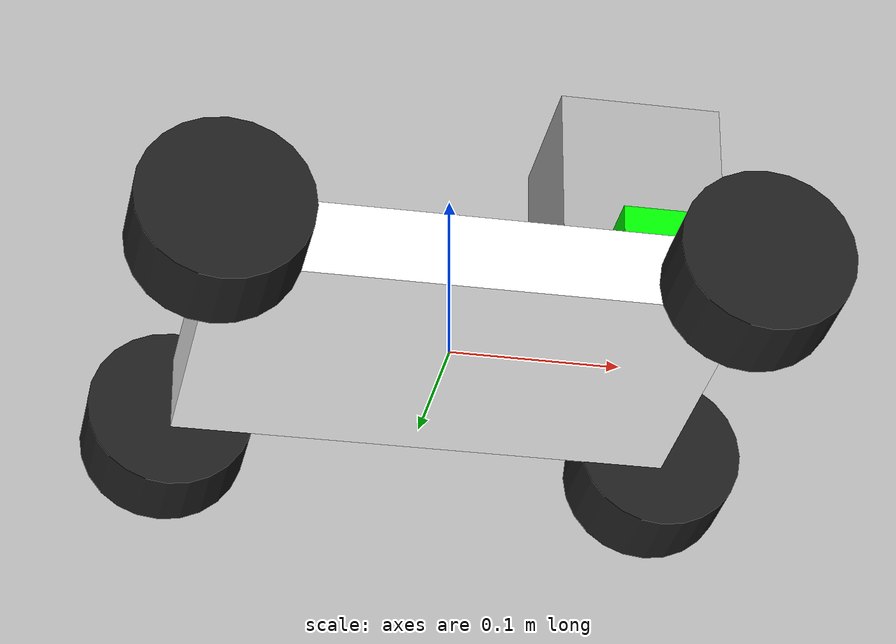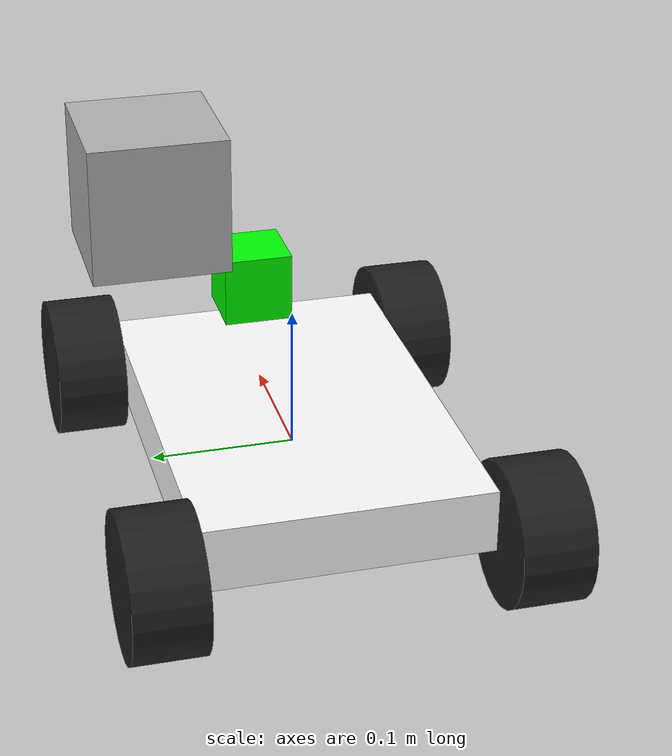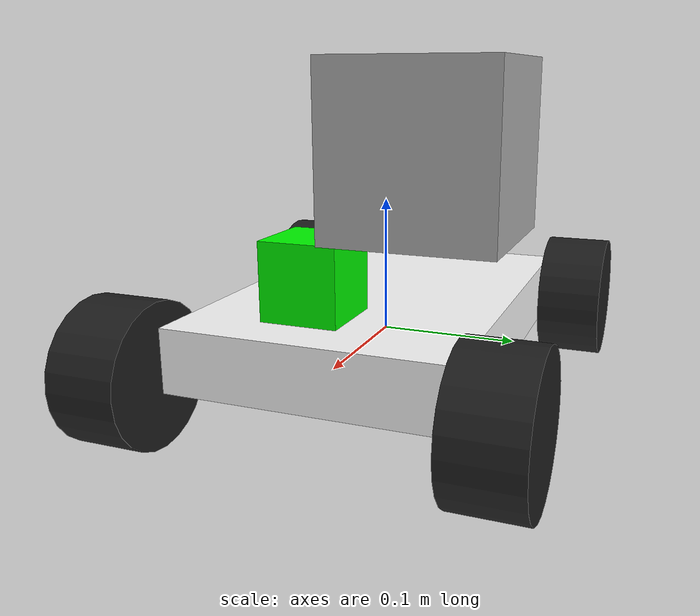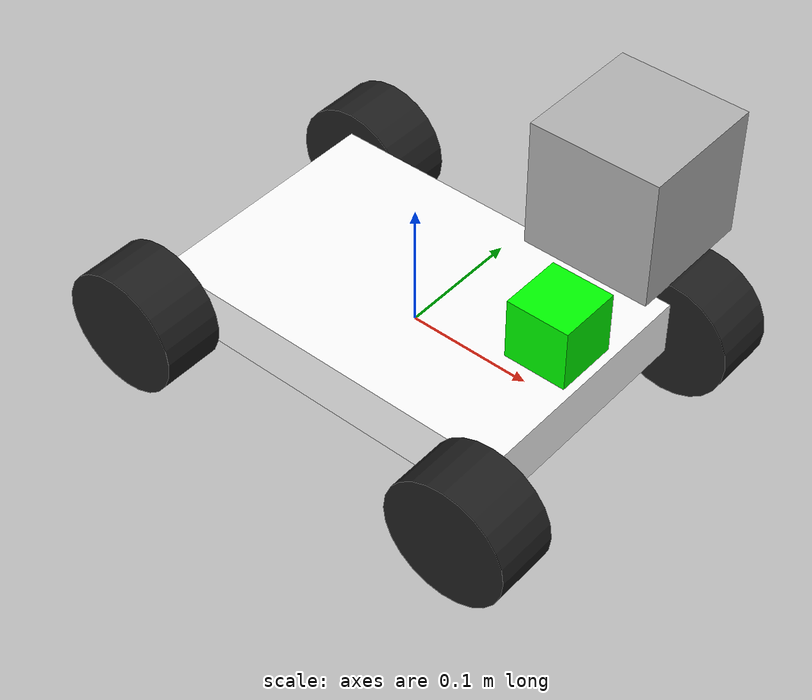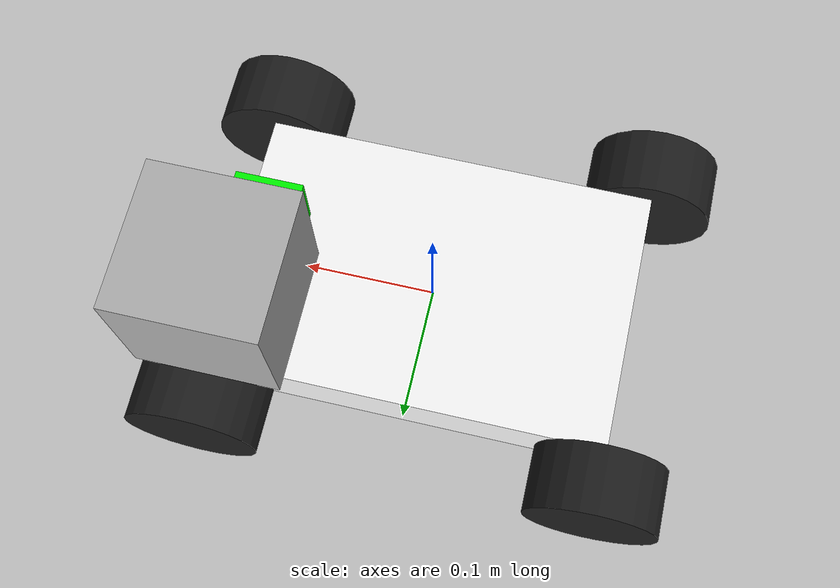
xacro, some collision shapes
<?xml version="1.0"?>

<robot xmlns:xacro="http://www.ros.org/wiki/xacro"
	xmlns:sensor="http://playerstage.sourceforge.net/gazebo/xmlschema/#sensor"
    	xmlns:controller="http://playerstage.sourceforge.net/gazebo/xmlschema/#controller"
    	xmlns:interface="http://playerstage.sourceforge.net/gazebo/xmlschema/#interface"
        name="smcar_xacro">

<xacro:include filename="$(find smcar)/urdf/robot.gazebo" />
<xacro:property name="length_wheel" value="0.05" />
<xacro:property name="radius_wheel" value="0.05" />
<xacro:property name="camera_link" value="0.05" />

  <!--inertial macro -->
  <xacro:macro name="default_inertial" params="mass">
    <inertial>
      <mass value="${mass}" />
      <inertia ixx="1.0" ixy="0.0" ixz="0.0"
        iyy="1.0" iyz="0.0" izz="1.0" />
      </inertial>
  </xacro:macro>
  <!--wheel link macro -->
  <xacro:macro name="default_wheel" params="wheel_link length radius location">
    <link name="${wheel_link}">
   		<visual>
     			<geometry>
       				<cylinder length="${length_wheel}" radius="${radius_wheel}"/>
     			</geometry>
			<origin rpy="0 0 0" xyz="0 0 0"/>
   			<material name="black"/>
   		</visual>
		<collision>
			<geometry>
       				<cylinder length="${length_wheel}" radius="${radius_wheel}"/>
			</geometry>
		</collision>
		<xacro:default_inertial mass="1"/>
 	</link>
  </xacro:macro>

  <!--end of macro declarations-->

	<link name="base_footprint">
   		<visual>
			<geometry>
      				<box size="0.001 0.001 0.001"/>
     			</geometry>
			<origin rpy="0 0 0" xyz="0 0 0"/>
   		</visual>
		<collision>
      			<geometry>
        			<box size="0.001 0.001 0.001"/>
      			</geometry>
    		</collision>
		<xacro:default_inertial mass="0.0001"/>
 	</link>

	<gazebo reference="base_footprint">
		<material>Gazebo/Green</material>
		<turnGravityOff>false</turnGravityOff>
	</gazebo>

	<joint name="base_footprint_joint" type="fixed">
		<origin xyz="0 0 0" />
		<parent link="base_link" />
		<child link="base_footprint" />
	</joint>

  <link name="base_link">
    <visual>
      <geometry>
        <box size="0.3 0.2 .045"/>
      </geometry>
      <origin rpy="0 0 0" xyz="0 0 0.01"/>
      <material name="white">
        <color rgba="1 1 1 1"/>
      </material>
    </visual>
    <collision>
      <geometry>
        <box size="0.3 0.2 0.045"/>
      </geometry>
    </collision>
    <inertial>
      <mass value="10"/>
      <inertia ixx="1.0" ixy="0.0" ixz="0.0" iyy="1.0" iyz="0.0" izz="1.0"/>
    </inertial>
  </link>

  <xacro:default_wheel wheel_link="wheel_1" length="0.05" radius="0.05" location="0 0 0"/>
  <xacro:default_wheel wheel_link="wheel_2" length="0.05" radius="0.05" location="0 0 0"/>
  <xacro:default_wheel wheel_link="wheel_3" length="0.05" radius="0.05" location="0 0 0"/>
  <xacro:default_wheel wheel_link="wheel_4" length="0.05" radius="0.05" location="0 0 0"/>

 <joint name="base_to_wheel1" type="continuous">
   <anchor xyz="0 0 0" />
   <limit effort="100" velocity="100" />
   <parent link="base_link"/>
   <child link="wheel_1"/>
   <origin rpy="-1.5707 0 0" xyz="0.15 0.125 0"/>
   <axis xyz="0 0 1" />
 </joint>

 <joint name="base_to_wheel2" type="continuous">
   <axis xyz="0 0 1" />
   <anchor xyz="0 0 0" />
   <limit effort="100" velocity="100" />
   <parent link="base_link"/>
   <child link="wheel_2"/>
   <origin rpy="-1.5707 0 0" xyz="-0.15 0.125 0"/>
</joint>

 <joint name="base_to_wheel3" type="continuous">
   <anchor xyz="0 0 0" />
   <limit effort="100" velocity="100" />
   <parent link="base_link"/>
   <axis xyz="0 0 1" />
   <child link="wheel_3"/>
   <origin rpy="-1.5707 0 0" xyz="0.15 -0.125 0"/>
 </joint>

 <joint name="base_to_wheel4" type="continuous">
   <anchor xyz="0 0 0" />
   <limit effort="100" velocity="100" />
   <parent link="base_link"/>
   <axis xyz="0 0 1" />
   <child link="wheel_4"/>
   <origin rpy="-1.5707 0 0" xyz="-0.15 -0.125 0"/>
 </joint>
  <!-- Camera joint -->
  <joint name="camera_joint" type="fixed">
    <axis xyz="0 1 0" />
    <origin xyz="0.125 0 0.07" rpy="0 0 0"/>
    <parent link="base_link"/>
    <child link="camera_link"/>
  </joint>

  <!-- Camera -->
  <link name="camera_link">
    <collision>
      <origin xyz="0 0 0" rpy="0 0 0"/>
      <geometry>
	<box size="0.05 0.05 0.05"/>
      </geometry>
    </collision>

    <visual>
      <origin xyz="0 0 0" rpy="0 0 0"/>
      <geometry>
	<box size="0.05 0.05 0.05"/>
      </geometry>
      <material name="green">
	<color rgba="0 1 0 1"/>
      </material>
    </visual>

    <inertial>
      <mass value="1e-5" />
      <origin xyz="0 0 0" rpy="0 0 0"/>
      <inertia ixx="1e-6" ixy="0" ixz="0" iyy="1e-6" iyz="0" izz="1e-6" />
    </inertial>
  </link>

  <!-- Hokuyo joint -->
  <joint name="hokuyo_joint" type="fixed">
    <origin xyz="0.125 0.075 0.15" rpy="0 0 0"/>
    <parent link="base_link"/>
    <axis xyz="0 1 0" />
    <child link="hokuyo_link"/>
  </joint>

  <!-- Hokuyo Laser -->
  <link name="hokuyo_link">
    <collision>
      <origin xyz="0 0 0" rpy="0 0 0"/>
      <geometry>
	<box size="0.1 0.1 0.1"/>
      </geometry>
    </collision>

    <visual>
      <origin xyz="0 0 0" rpy="0 0 0"/>
      <geometry>
        <mesh filename="package://smcar/meshes/hokuyo.dae"/>
      </geometry>
    </visual>

    <inertial>
      <mass value="1e-5" />
      <origin xyz="0 0 0" rpy="0 0 0"/>
      <inertia ixx="1e-6" ixy="0" ixz="0" iyy="1e-6" iyz="0" izz="1e-6" />
    </inertial>
  </link>

  <!-- Drive controller -->
<gazebo>
  <plugin name="skid_steer_drive_controller" filename="libgazebo_ros_skid_steer_drive.so">
    <updateRate>100.0</updateRate>
    <robotNamespace>/</robotNamespace>
    <leftFrontJoint>base_to_wheel1</leftFrontJoint>
    <rightFrontJoint>base_to_wheel3</rightFrontJoint>
    <leftRearJoint>base_to_wheel2</leftRearJoint>
    <rightRearJoint>base_to_wheel4</rightRearJoint>
    <wheelSeparation>0.25</wheelSeparation>
    <wheelDiameter>0.1</wheelDiameter>
    <robotBaseFrame>base_link</robotBaseFrame>
    <torque>4.8</torque>
    <topicName>cmd_vel</topicName>
    <broadcastTF>1</broadcastTF>
  </plugin>
</gazebo>

</robot>
